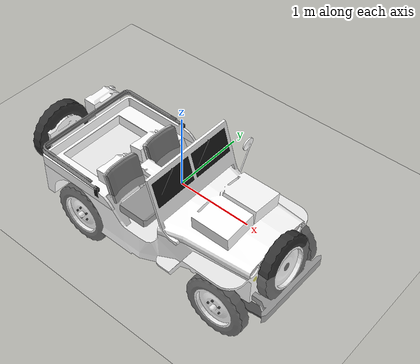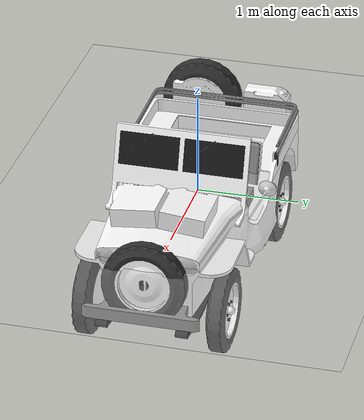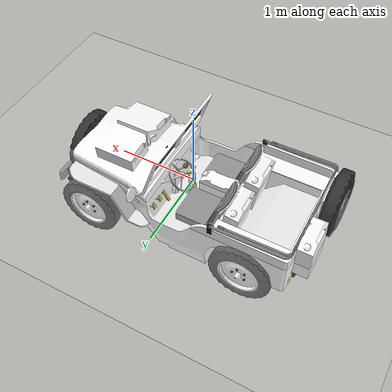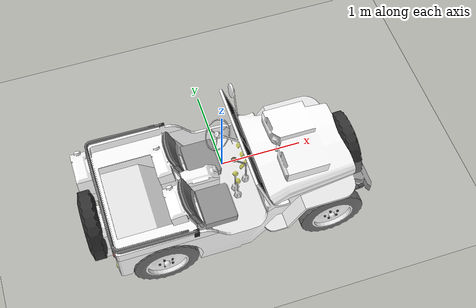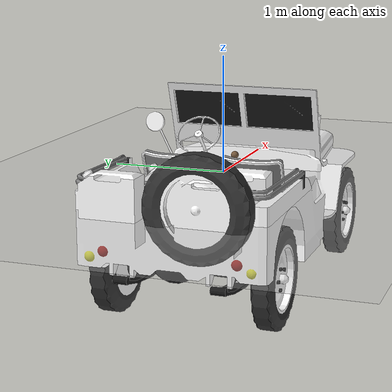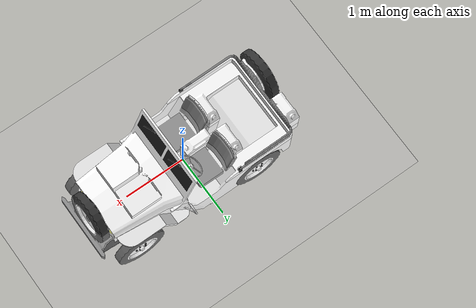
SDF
<?xml version="1.0" ?>
<sdf version="1.6">
  <world name="default">
    <gui>
      <camera name="user_camera">
        <pose>-5 0 1 0 0.2 0</pose>
      </camera>
    </gui>
    <physics type="ode">
      <ode>
        <solver>
          <type>quick</type>
          <iters>100</iters>
          <sor>1.0</sor>
        </solver>
        <constraints>
          <cfm>0.0</cfm>
          <erp>0.2</erp>
          <contact_max_correcting_vel>0.1</contact_max_correcting_vel>
          <contact_surface_layer>0.0</contact_surface_layer>
        </constraints>
      </ode>
      <real_time_update_rate>0</real_time_update_rate>
      <max_step_size>0.0020</max_step_size>
    </physics>
    <gravity>0 0 -9.8</gravity>
    <include>
      <uri>model://sun</uri>
    </include>

    <model name="ground_plane">
      <static>true</static>
      <link name="link">
        <collision name="collision">
          <geometry>
            <plane>
              <normal>0 0 1</normal>
              <size>5000 5000</size>
            </plane>
          </geometry>
          <surface>
            <friction>
              <ode>
                <mu>100</mu>
                <mu2>50</mu2>
              </ode>
            </friction>
          </surface>
        </collision>
        <visual name="runway">
          <pose>000 0 0.005 0 0 0</pose>
          <cast_shadows>false</cast_shadows>
          <geometry>
            <plane>
              <normal>0 0 1</normal>
              <size>1829 45</size>
            </plane>
          </geometry>
          <material>
            <script>
              <uri>file://media/materials/scripts/gazebo.material</uri>
              <name>Gazebo/Runway</name>
            </script>
          </material>
        </visual>

        <visual name="grass">
          <pose>0 0 -0.1 0 0 0</pose>
          <cast_shadows>false</cast_shadows>
          <geometry>
            <plane>
              <normal>0 0 1</normal>
              <size>5000 5000</size>
            </plane>
          </geometry>
          <material>
            <script>
              <uri>file://media/materials/scripts/gazebo.material</uri>
              <name>Gazebo/Grass</name>
            </script>
          </material>
        </visual>

      </link>
    </model>

    <model name="rover_demo">
      <include>
        <uri>model://rover</uri>
      </include>
    </model>
  </world>
</sdf>

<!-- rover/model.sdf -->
<sdf version="1.6" xmlns:xacro='http://ros.org/wiki/xacro'>
  <model name="rover_demo">
    <include>
      <uri>model://jeep</uri>
    </include>

    <!-- plugins -->
    <plugin name="ardurover_plugin" filename="libArduPilotPlugin_Rover.so">
      <fdm_addr>127.0.0.1</fdm_addr>
      <fdm_port_in>9002</fdm_port_in>
      <fdm_port_out>9003</fdm_port_out>
      <!--
          Require by APM :
          Only change model and gazebo from XYZ to XY-Z coordinates
      -->
      <modelXYZToAirplaneXForwardZDown>0 0 0 3.141593 0 0</modelXYZToAirplaneXForwardZDown>
      <gazeboXYZToNED>0 0 0 3.141593 0 0</gazeboXYZToNED>
      <imuName>rover_demo::jeep::jeep_imu_link::jeep_imu_sensor</imuName>
      <connectionTimeoutMaxCount>5</connectionTimeoutMaxCount>

      <control channel="0">
        <type>POSITION</type>
		<useForce>0</useForce>
        <offset>0</offset>
        <p_gain>25</p_gain>
        <i_gain>0</i_gain>
        <d_gain>10</d_gain>
        <i_max>0</i_max>
        <i_min>0</i_min>
        <cmd_max>20</cmd_max>
        <cmd_min>-20</cmd_min>
        <jointName>jeep::left_front_steer_jiont</jointName>
        <multiplier>0.60</multiplier>
        <controlVelocitySlowdownSim>1</controlVelocitySlowdownSim>
      </control>
      <control channel="1">
        <type>POSITION</type>
		<useForce>0</useForce>
        <offset>0</offset>
        <p_gain>25</p_gain>
        <i_gain>0</i_gain>
        <d_gain>10</d_gain>
        <i_max>0</i_max>
        <i_min>0</i_min>
        <cmd_max>20</cmd_max>
        <cmd_min>-20</cmd_min>
        <jointName>jeep::right_front_steer_jiont</jointName>
        <multiplier>0.60</multiplier>
        <controlVelocitySlowdownSim>1</controlVelocitySlowdownSim>
      </control>
      <control channel="2">
		<!--
          incoming control command [0, 1]
          so offset it by 0 to get [0, 1]
          and divide max target by 1.
          offset = 0
          multiplier = 838 max rpm / 1 = 838
        -->
        <type>VELOCITY</type>
		<useForce>0</useForce>
        <offset>0</offset>
        <p_gain>5</p_gain>
        <i_gain>1</i_gain>
        <d_gain>2</d_gain>
        <i_max>3</i_max>
        <i_min>0</i_min>
        <cmd_max>10</cmd_max>
        <cmd_min>-10</cmd_min>
        <jointName>jeep::left_back_jiont</jointName>
        <multiplier>40</multiplier>
        <controlVelocitySlowdownSim>1</controlVelocitySlowdownSim>
      </control>
      <control channel="3">
        <type>VELOCITY</type>
		<useForce>0</useForce>
        <offset>0</offset>
        <p_gain>5</p_gain>
        <i_gain>1</i_gain>
        <d_gain>2</d_gain>
        <i_max>3</i_max>
        <i_min>0</i_min>
        <cmd_max>10</cmd_max>
        <cmd_min>-10</cmd_min>
        <jointName>jeep::right_back_jiont</jointName>
        <multiplier>40</multiplier>
        <controlVelocitySlowdownSim>1</controlVelocitySlowdownSim>
      </control>
    </plugin>
  </model>
</sdf>

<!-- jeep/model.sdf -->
<sdf version="1.6">
	<model name='jeep'>
		<pose>0 0 0 0 0 3.1415926</pose>
		<link name='frame_link'>
			<pose>0 0 0 0 0 0</pose>
			<velocity_decay>
		    	<linear>0.0</linear>
		    	<angular>0.0</angular>
			</velocity_decay>
			<inertial>
				<pose>0 0 0 0 0 0</pose>
				<mass>15</mass>
				<inertia>
				  <ixx>4</ixx>
				  <ixy>0</ixy>
				  <ixz>0</ixz>
				  <iyy>4</iyy>
				  <iyz>0</iyz>
				  <izz>5</izz>
				</inertia>
			</inertial>
			<collision name="collision_frame">
				<geometry>
					<mesh>
						<uri>model://jeep/mesh/frame/frame.dae</uri>
					</mesh>
				</geometry>
			</collision>
			<visual name='frame_visual'>
				<geometry>
					<mesh>
						<uri>model://jeep/mesh//frame/frame.dae</uri>
					</mesh>
				</geometry>
			</visual>
		</link>
	<!-- left front wheel-->
		<link name='tire_left_front_link'>
		<pose>-1.19 -0.57 -0.57 0 0 0</pose>
		<collision name="collision_tire_left_front">
			<geometry>
				<mesh>
					<uri>model://jeep/mesh/tire/tire.dae</uri>
				</mesh>
			</geometry>
			<surface>
		      <friction>
		        <ode>
		          <mu>0.5</mu>
		          <mu2>0.5</mu2>
		        </ode>
		      </friction>
			</surface>
		</collision>
		<visual name='tire_left_front_visual'>
			<geometry>
				<mesh>
					<uri>model://jeep/mesh/tire/tire.dae</uri>
					</mesh>
			</geometry>
		</visual>
		</link>
	<!-- right front wheel -->
		<link name='tire_right_front_link'>
		<pose>-1.19 0.75 -0.57 0 0 3.1415926</pose>
		<collision name="collision_tire_right_front">
			<geometry>
				<mesh>
					<uri>model://jeep/mesh/tire/tire.dae</uri>
				</mesh>
			</geometry>
			<surface>
		      <friction>
		        <ode>
		          <mu>0.5</mu>
		          <mu2>0.5</mu2>
		        </ode>
		      </friction>
			</surface>
		</collision>
		<visual name='tire_right_front_visual'>
			<geometry>
				<mesh>
					<uri>model://jeep/mesh/tire/tire.dae</uri>
				</mesh>
			</geometry>
		</visual>
		</link>

		<!-- left back wheel-->
		<link name='tire_left_back_link'>
		<pose>0.95 -0.57 -0.57 0 0 0</pose>
		<collision name="collision_tire_left_back">
			<geometry>
				<mesh>
					<uri>model://jeep/mesh/tire/tire.dae</uri>
				</mesh>
			</geometry>
			<surface>
		      <friction>
		        <ode>
		          <mu>0.5</mu>
		          <mu2>0.5</mu2>
		        </ode>
		      </friction>
			</surface>
		</collision>
		<visual name='tire_left_back_visual'>
			<geometry>
				<mesh>
					<uri>model://jeep/mesh/tire/tire.dae</uri>
					</mesh>
			</geometry>
		</visual>
		</link>
		<joint name='left_back_jiont' type='revolute'>
			<child>tire_left_back_link</child>
			<parent>frame_link</parent>
			<axis>
		    	<xyz>0 -1 0</xyz>
				<limit>
		      		<lower>-1e+16</lower>
		      		<upper>1e+16</upper>
		    	</limit>
		    	<dynamics>
		      		<damping>0.04</damping>
					<friction>5</friction>
		    	</dynamics>
		    	<use_parent_model_frame>1</use_parent_model_frame>
			</axis>
		</joint>
		<!-- right back wheel-->
		<link name='tire_right_back_link'>
		<pose>0.95 0.75 -0.57 0 0 3.1415926</pose>
		<collision name="collision_tire_right_back">
			<geometry>
				<mesh>
					<uri>model://jeep/mesh/tire/tire.dae</uri>
				</mesh>
			</geometry>
			<surface>
		      <friction>
		        <ode>
		          <mu>0.5</mu>
		          <mu2>0.5</mu2>
		        </ode>
		      </friction>
			</surface>
		</collision>
		<visual name='tire_right_back_visual'>
			<geometry>
				<mesh>
					<uri>model://jeep/mesh/tire/tire.dae</uri>
					</mesh>
			</geometry>
		</visual>
		</link>
		<joint name='right_back_jiont' type='revolute'>
			<child>tire_right_back_link</child>
			<parent>frame_link</parent>
			<axis>
		    	<xyz>0 -1 0</xyz>
				<limit>
		      		<lower>-1e+16</lower>
		      		<upper>1e+16</upper>
		    	</limit>
		    	<dynamics>
		      		<damping>0.004</damping>
					<friction>5</friction>
		    	</dynamics>
		    	<use_parent_model_frame>1</use_parent_model_frame>
			</axis>
		</joint>
	<!--front wheel steer-->
		<joint name='left_front_steer_jiont' type='universal'>
			<child>tire_left_front_link</child>
			<parent>frame_link</parent>
			<axis>
		    	<xyz>0 0 -1</xyz>
				<limit>
		      		<lower>-0.785398</lower>
		      		<upper>0.785398</upper>
		    	</limit>
		    	<dynamics>
		      		<damping>0.004</damping>
					<friction>0.05</friction>
		    	</dynamics>
		    	<use_parent_model_frame>1</use_parent_model_frame>
			</axis>
			<axis2>
				<xyz>0 1 0</xyz>
				<limit>
		      		<lower>-1e+16</lower>
		      		<upper>1e+16</upper>
		    	</limit>
		    	<dynamics>
		      		<damping>0.004</damping>
					<friction>5</friction>
		    	</dynamics>
		    	<use_parent_model_frame>1</use_parent_model_frame>
			</axis2>
		</joint>
		<joint name='right_front_steer_jiont' type='universal'>
			<child>tire_right_front_link</child>
			<parent>frame_link</parent>
			<axis>
		    	<xyz>0 0 -1</xyz>
				<limit>
		      		<lower>-0.785398</lower>
		      		<upper>0.785398</upper>
		    	</limit>
		    	<dynamics>
		      		<damping>0.004</damping>
					<friction>0.05</friction>
		    	</dynamics>
		    	<use_parent_model_frame>1</use_parent_model_frame>
			</axis>
			<axis2>
				<xyz>0 1 0</xyz>
				<limit>
		      		<lower>-1e+16</lower>
		      		<upper>1e+16</upper>
		    	</limit>
		    	<dynamics>
		      		<damping>0.004</damping>
					<friction>5</friction>
		    	</dynamics>
		    	<use_parent_model_frame>1</use_parent_model_frame>
			</axis2>
		</joint>

	<!-- IMU-->
		<link name='jeep_imu_link'>
		  <inertial>
		    <pose>0 0 0 0 0 0</pose>
		    <mass>0.15</mass>
		    <inertia>
		      <ixx>0.00001</ixx>
		      <ixy>0</ixy>
		      <ixz>0</ixz>
		      <iyy>0.00002</iyy>
		      <iyz>0</iyz>
		      <izz>0.00002</izz>
		    </inertia>
		  </inertial>
		  <sensor name="jeep_imu_sensor" type="imu">
		    <pose>0 0 0 3.141593 0 3.141593</pose>
		    <always_on>1</always_on>
		    <update_rate>1000.0</update_rate>
		  </sensor>
		</link>
		<joint name='jeep_imu_joint' type='revolute'>
		  <child>jeep_imu_link</child>
		  <parent>frame_link</parent>
		  <axis>
		    <xyz>0 0 1</xyz>
		    <limit>
		      <lower>0</lower>
		      <upper>0</upper>
		      <effort>0</effort>
		      <velocity>0</velocity>
		    </limit>
		    <dynamics>
		      <damping>1.0</damping>
		    </dynamics>
		    <use_parent_model_frame>1</use_parent_model_frame>
		  </axis>
		  <physics>
		    <ode>
		      <implicit_spring_damper>1</implicit_spring_damper>
		    </ode>
		  </physics>
		</joint>
	</model>
</sdf>
